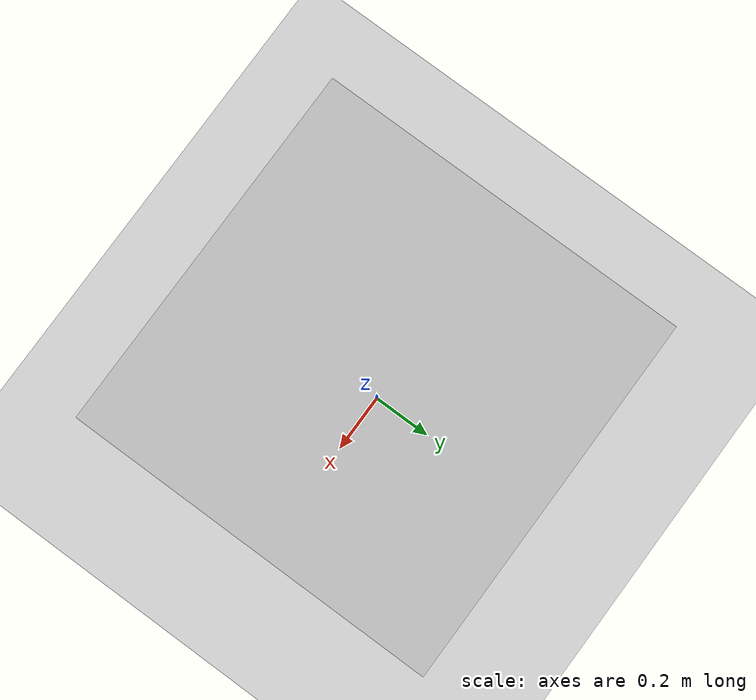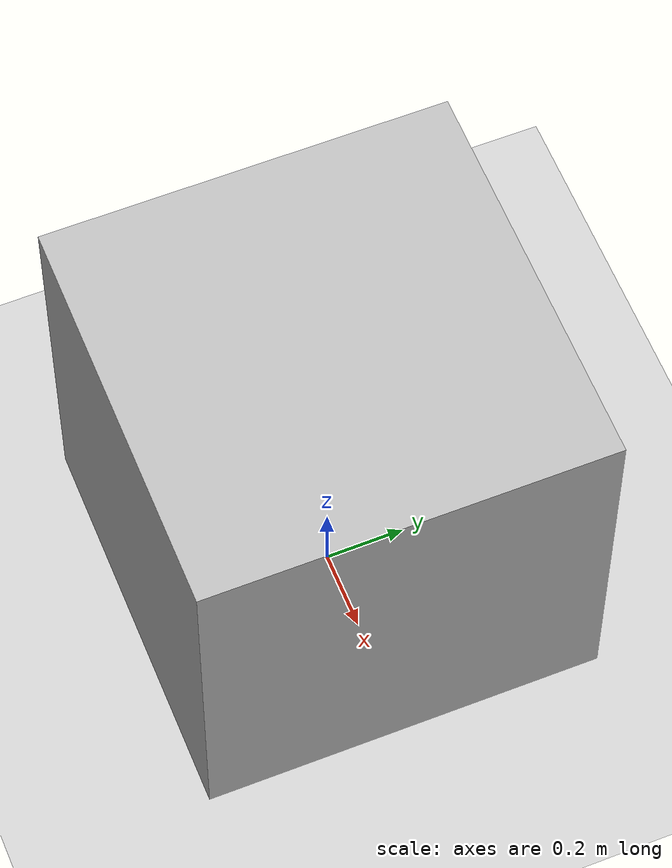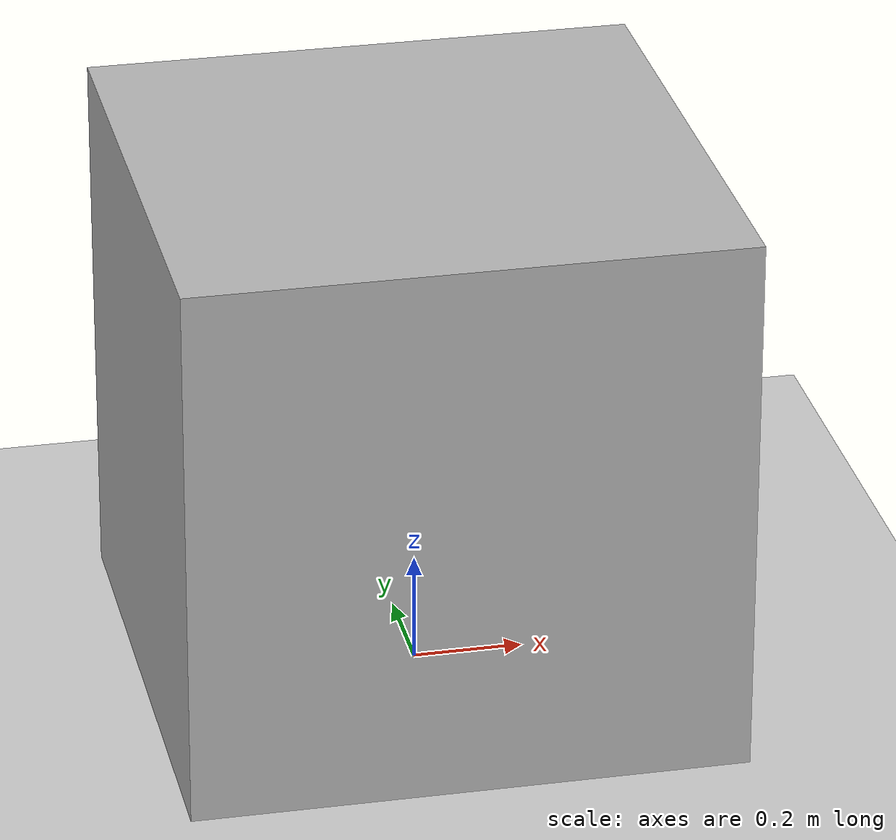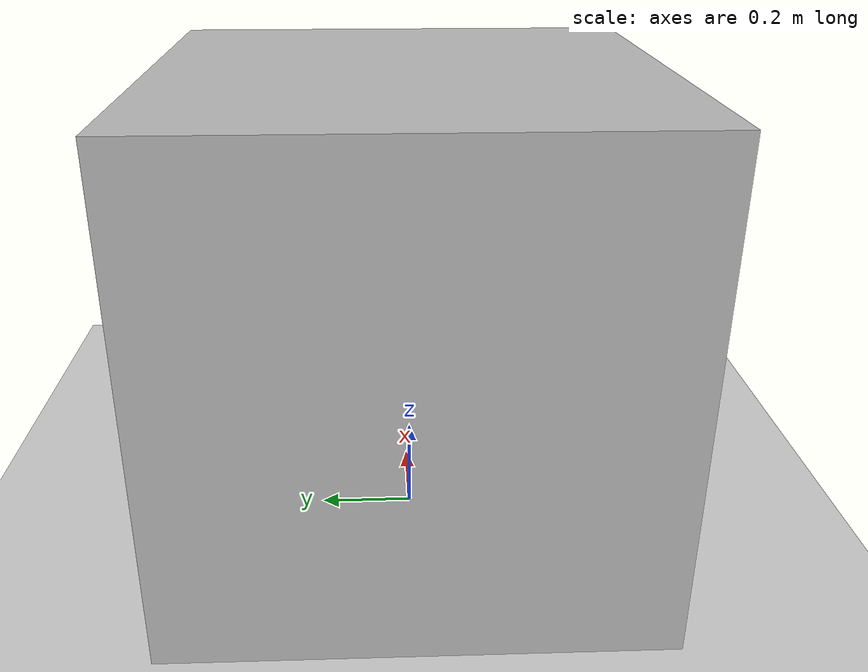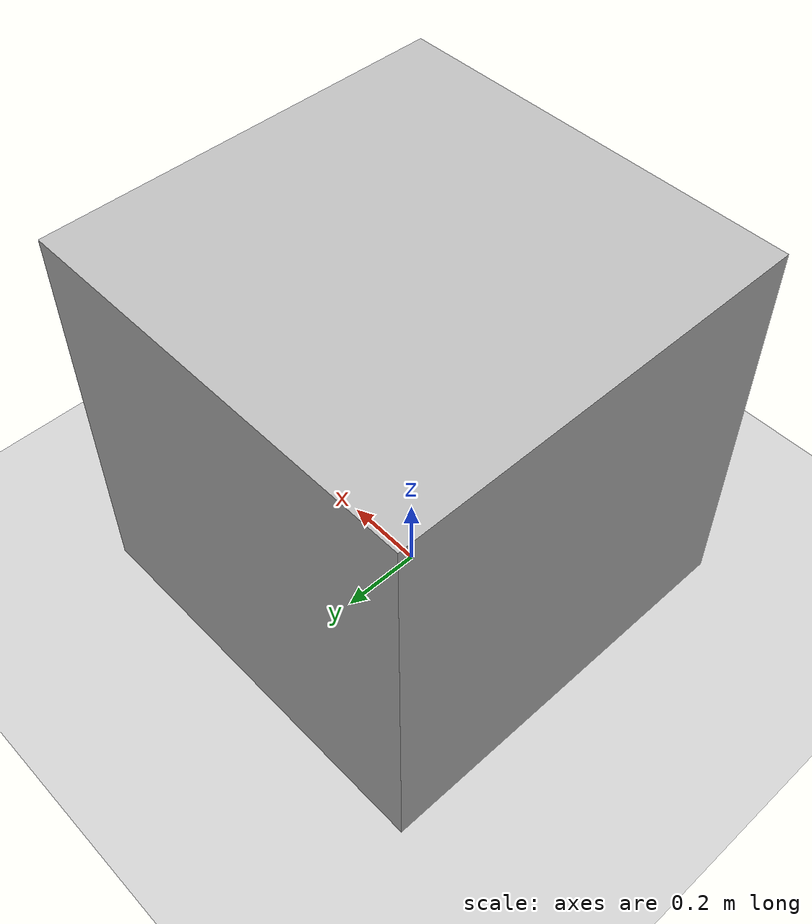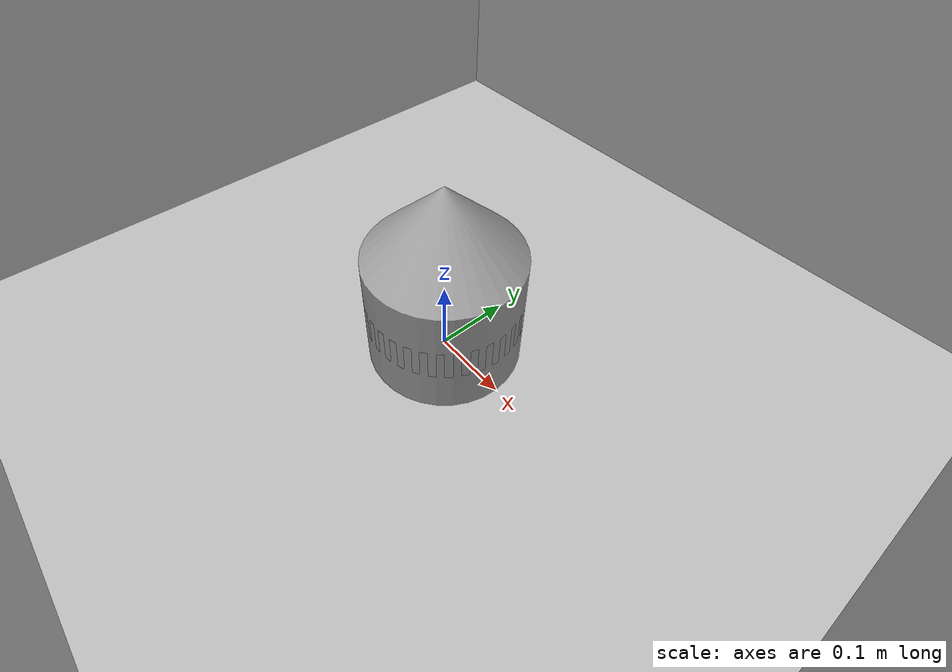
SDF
<?xml version="1.0" ?>
 <sdf version="1.5">
 <world name="default">
 <!-- A global light source -->
 <include>
 <uri>model://sun</uri>
 </include>
 <!-- A ground plane -->
 <include>
 <uri>model://ground_plane</uri>
 </include>

 <!-- A testing model that includes the Velodyne sensor model -->
 <model name="rotatorek">
 <include>
 <uri>rotatorek</uri>
 </include>

 <!-- Attach the plugin to this model -->
 <plugin name="rotator" filename="rotator/build/librotator.so">
	 <velocity>-0.1</velocity>
 </plugin>
 </model>

 <model name="box">
	 <pose>0 0 0.5 0 0 0</pose>
	 <link name="link">
		 <collision name="collision">
			 <geometry>
				 <box>
					 <size>1 1 1</size>
				 </box>
			 </geometry>
		 </collision>

		 <visual name="visual">
			 <geometry>
				 <box>
					 <size>1 1 1</size>
				 </box>
			 </geometry>
		 </visual>
	 </link>

	 <plugin name="model_push" filename="rotator/build/librotator.so">
		 <velocity>0.1</velocity>
	 </plugin>
 </model>

 </world>
 </sdf>

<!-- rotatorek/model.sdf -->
<sdf version="1.5">
<model name="velodyne">
<link name="base">
<pose>0 0 0.029335 0 0 0</pose>
<inertial>
<mass>1.2</mass>
<inertia>
<ixx>0.001087473</ixx>
<iyy>0.001087473</iyy>
<izz>0.001092437</izz>
<ixy>0</ixy>
<ixz>0</ixz>
<iyz>0</iyz>
</inertia>
</inertial>
<collision name="base_collision">
<geometry>
<cylinder>
<radius>.04267</radius>
<length>.05867</length>
</cylinder>
</geometry>
</collision>
<visual name="base_visual">
<pose>0 0 -0.029335 0 0 0</pose>
<geometry>
<mesh>
<uri>model://rotatorek/meshes/base.dae</uri>
</mesh>
</geometry>
</visual>
</link>

<link name="top">
<pose>0 0 0.095455 0 0 0</pose>
<inertial>
<mass>0.1</mass>
<inertia>
<ixx>0.000090623</ixx>
<iyy>0.000090623</iyy>
<izz>0.000091036</izz>
<ixy>0</ixy>
<ixz>0</ixz>
<iyz>0</iyz>
</inertia>
</inertial>
<collision name="top_collision">
<geometry>
<cylinder>
<radius>0.04267</radius>
<length>0.07357</length>
</cylinder>
</geometry>
</collision>
<visual name="top_visual">
<pose>0 0 -0.0376785 0 0 1.5707</pose>
<geometry>
<mesh>
<uri>model://rotatorek/meshes/top.dae</uri>
</mesh>
</geometry>
</visual>

<sensor type="ray" name="sensor">
<pose>0 0 -0.004645 1.5707 0 0</pose>
<visualize>true</visualize>
<update_rate>30</update_rate>
<ray>
<noise>
<type>gaussian</type>
<mean>0.0</mean>
<stddev>0.1</stddev>
</noise>

<scan>
<horizontal>
<samples>32</samples>
<resolution>1</resolution>
<min_angle>-0.53529248</min_angle>
<max_angle>0.18622663</max_angle>
</horizontal>
</scan>

<range>
<min>0.1</min>
<max>70</max>
<resolution>0.02</resolution>
</range>
</ray>
</sensor>
</link>

<joint type="revolute" name="joint">
<pose>0 0 -0.036785 0 0 0</pose>
<parent>base</parent>
<child>top</child>
<axis>
<xyz>0 0 1</xyz>
<limit>
<lower>-10000000000000000</lower>
<upper>10000000000000000</upper>
</limit>
</axis>
</joint>

</model>
</sdf>
